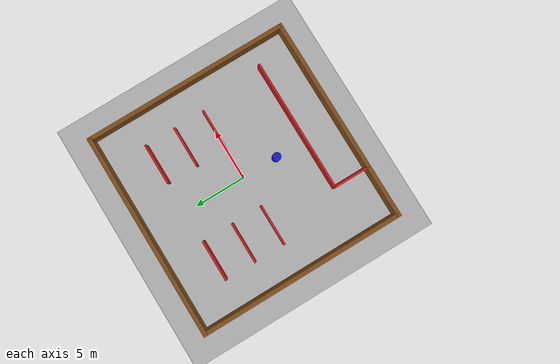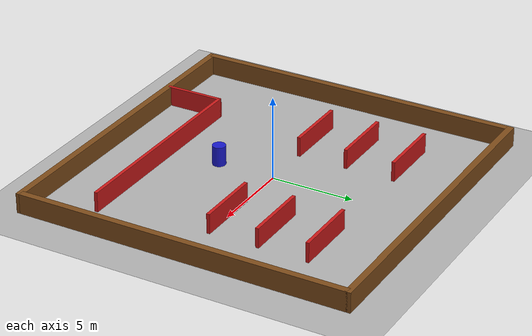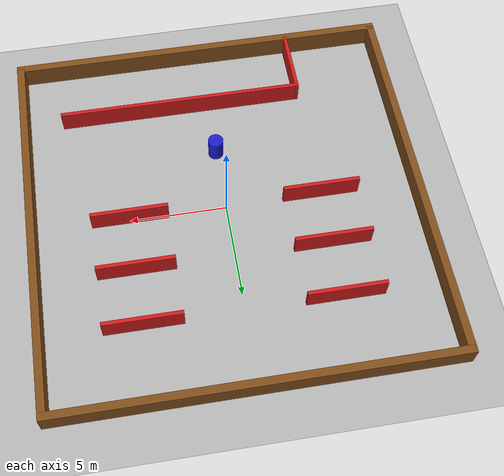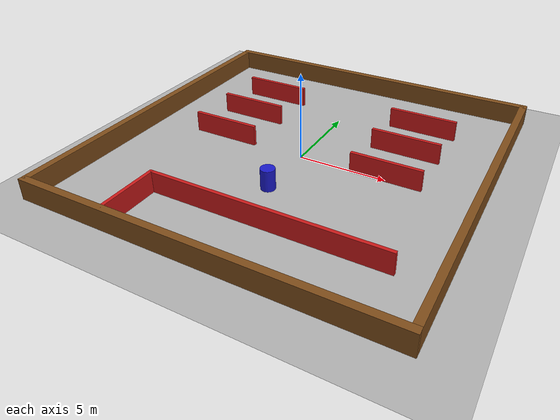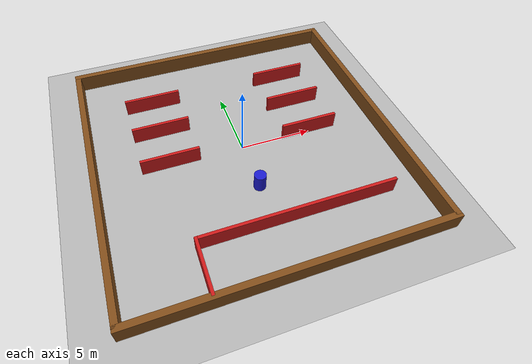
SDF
<?xml version='1.0' encoding='utf-8'?>
<sdf version="1.7">
  <world name="default">
    <!-- Işık ve Zemin -->
    <light name="sun" type="directional">
      <cast_shadows>1</cast_shadows>
      <pose>0 0 10 0 -0 0</pose>
      <diffuse>0.8 0.8 0.8 1</diffuse>
      <specular>0.2 0.2 0.2 1</specular>
      <attenuation>
        <range>1000</range>
        <constant>0.9</constant>
        <linear>0.01</linear>
        <quadratic>0.001</quadratic>
      </attenuation>
      <direction>-0.5 0.1 -0.9</direction>
    </light>

    <model name="ground_plane">
      <static>1</static>
      <link name="link">
        <collision name="collision">
          <geometry><plane><normal>0 0 1</normal><size>100 100</size></plane></geometry>
          <surface><friction><ode><mu>100</mu><mu2>50</mu2></ode></friction></surface>
        </collision>
        <visual name="visual">
          <geometry><plane><normal>0 0 1</normal><size>100 100</size></plane></geometry>
          <material>
            <ambient>0.7 0.7 0.7 1</ambient>
            <diffuse>0.7 0.7 0.7 1</diffuse>
          </material>
        </visual>
      </link>
    </model>

    <gravity>0 0 -9.8</gravity>
    <physics type="ode">
      <max_step_size>0.001</max_step_size>
      <real_time_factor>1</real_time_factor>
      <real_time_update_rate>1000</real_time_update_rate>
    </physics>

    <!-- ARENA VE DUVARLAR -->
    <model name="custom_arena">
      <static>1</static>
      <link name="walls_link">

        <!-- 1. DIŞ ÇEVRE DUVARLARI -->
        <collision name="c_north"><pose>0 10 0.6 0 0 0</pose><geometry><box><size>20.4 0.4 1.2</size></box></geometry></collision>
        <visual name="v_north"><pose>0 10 0.6 0 0 0</pose><geometry><box><size>20.4 0.4 1.2</size></box></geometry>
          <material><ambient>0.5 0.3 0.1 1</ambient><diffuse>0.5 0.3 0.1 1</diffuse></material>
        </visual>

        <collision name="c_south"><pose>0 -10 0.6 0 0 0</pose><geometry><box><size>20.4 0.4 1.2</size></box></geometry></collision>
        <visual name="v_south"><pose>0 -10 0.6 0 0 0</pose><geometry><box><size>20.4 0.4 1.2</size></box></geometry>
          <material><ambient>0.5 0.3 0.1 1</ambient><diffuse>0.5 0.3 0.1 1</diffuse></material>
        </visual>

        <collision name="c_east"><pose>10 0 0.6 0 0 0</pose><geometry><box><size>0.4 20 1.2</size></box></geometry></collision>
        <visual name="v_east"><pose>10 0 0.6 0 0 0</pose><geometry><box><size>0.4 20 1.2</size></box></geometry>
          <material><ambient>0.5 0.3 0.1 1</ambient><diffuse>0.5 0.3 0.1 1</diffuse></material>
        </visual>

        <collision name="c_west"><pose>-10 0 0.6 0 0 0</pose><geometry><box><size>0.4 20 1.2</size></box></geometry></collision>
        <visual name="v_west"><pose>-10 0 0.6 0 0 0</pose><geometry><box><size>0.4 20 1.2</size></box></geometry>
          <material><ambient>0.5 0.3 0.1 1</ambient><diffuse>0.5 0.3 0.1 1</diffuse></material>
        </visual>

        <!-- 2. SOL TARAFTAKİ RAFLAR -->
        <collision name="c_shelf_l1"><pose>-5 6 0.6 0 0 0</pose><geometry><box><size>4 0.2 1.2</size></box></geometry></collision>
        <visual name="v_shelf_l1"><pose>-5 6 0.6 0 0 0</pose><geometry><box><size>4 0.2 1.2</size></box></geometry>
          <material><ambient>0.8 0.1 0.1 1</ambient><diffuse>0.8 0.1 0.1 1</diffuse></material>
        </visual>

        <collision name="c_shelf_l2"><pose>-5 3 0.6 0 0 0</pose><geometry><box><size>4 0.2 1.2</size></box></geometry></collision>
        <visual name="v_shelf_l2"><pose>-5 3 0.6 0 0 0</pose><geometry><box><size>4 0.2 1.2</size></box></geometry>
          <material><ambient>0.8 0.1 0.1 1</ambient><diffuse>0.8 0.1 0.1 1</diffuse></material>
        </visual>

        <collision name="c_shelf_l3"><pose>-5 0 0.6 0 0 0</pose><geometry><box><size>4 0.2 1.2</size></box></geometry></collision>
        <visual name="v_shelf_l3"><pose>-5 0 0.6 0 0 0</pose><geometry><box><size>4 0.2 1.2</size></box></geometry>
          <material><ambient>0.8 0.1 0.1 1</ambient><diffuse>0.8 0.1 0.1 1</diffuse></material>
        </visual>

        <!-- 3. SAĞ TARAFTAKİ RAFLAR -->
        <collision name="c_shelf_r1"><pose>5 6 0.6 0 0 0</pose><geometry><box><size>4 0.2 1.2</size></box></geometry></collision>
        <visual name="v_shelf_r1"><pose>5 6 0.6 0 0 0</pose><geometry><box><size>4 0.2 1.2</size></box></geometry>
          <material><ambient>0.8 0.1 0.1 1</ambient><diffuse>0.8 0.1 0.1 1</diffuse></material>
        </visual>

        <collision name="c_shelf_r2"><pose>5 3 0.6 0 0 0</pose><geometry><box><size>4 0.2 1.2</size></box></geometry></collision>
        <visual name="v_shelf_r2"><pose>5 3 0.6 0 0 0</pose><geometry><box><size>4 0.2 1.2</size></box></geometry>
          <material><ambient>0.8 0.1 0.1 1</ambient><diffuse>0.8 0.1 0.1 1</diffuse></material>
        </visual>

        <collision name="c_shelf_r3"><pose>5 0 0.6 0 0 0</pose><geometry><box><size>4 0.2 1.2</size></box></geometry></collision>
        <visual name="v_shelf_r3"><pose>5 0 0.6 0 0 0</pose><geometry><box><size>4 0.2 1.2</size></box></geometry>
          <material><ambient>0.8 0.1 0.1 1</ambient><diffuse>0.8 0.1 0.1 1</diffuse></material>
        </visual>

        <!-- 4. ORTADAKİ MAVİ SÜTUN -->
        <collision name="c_center_pillar"><pose>0 -3.5 0.6 0 0 0</pose><geometry><cylinder><radius>0.4</radius><length>1.2</length></cylinder></geometry></collision>
        <visual name="v_center_pillar"><pose>0 -3.5 0.6 0 0 0</pose><geometry><cylinder><radius>0.4</radius><length>1.2</length></cylinder></geometry>
          <material><ambient>0.1 0.1 0.8 1</ambient><diffuse>0.1 0.1 0.8 1</diffuse></material>
        </visual>

        <!-- 5. "L" ŞEKLİNDEKİ ENGEL -->
        <collision name="c_L_horiz"><pose>1.5 -6.5 0.6 0 0 0</pose><geometry><box><size>13 0.2 1.2</size></box></geometry></collision>
        <visual name="v_L_horiz"><pose>1.5 -6.5 0.6 0 0 0</pose><geometry><box><size>13 0.2 1.2</size></box></geometry>
          <material><ambient>0.8 0.1 0.1 1</ambient><diffuse>0.8 0.1 0.1 1</diffuse></material>
        </visual>

        <collision name="c_L_vert"><pose>-5 -8.2 0.6 0 0 0</pose><geometry><box><size>0.2 3.6 1.2</size></box></geometry></collision>
        <visual name="v_L_vert"><pose>-5 -8.2 0.6 0 0 0</pose><geometry><box><size>0.2 3.6 1.2</size></box></geometry>
          <material><ambient>0.8 0.1 0.1 1</ambient><diffuse>0.8 0.1 0.1 1</diffuse></material>
        </visual>

      </link>
    </model>
  </world>
</sdf>
